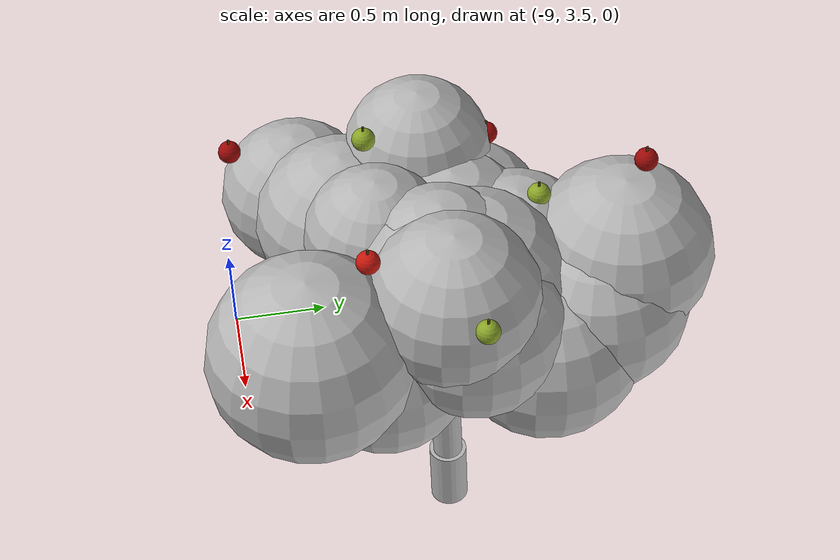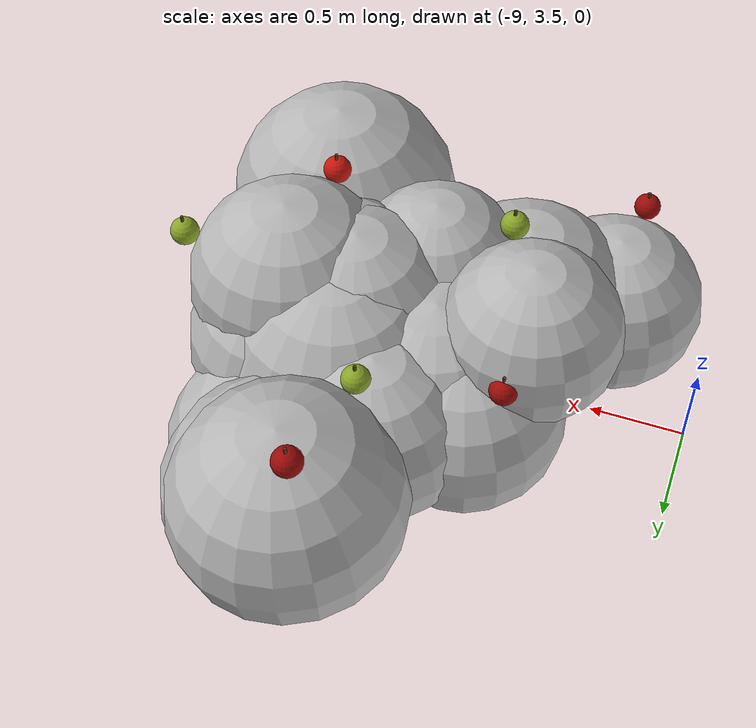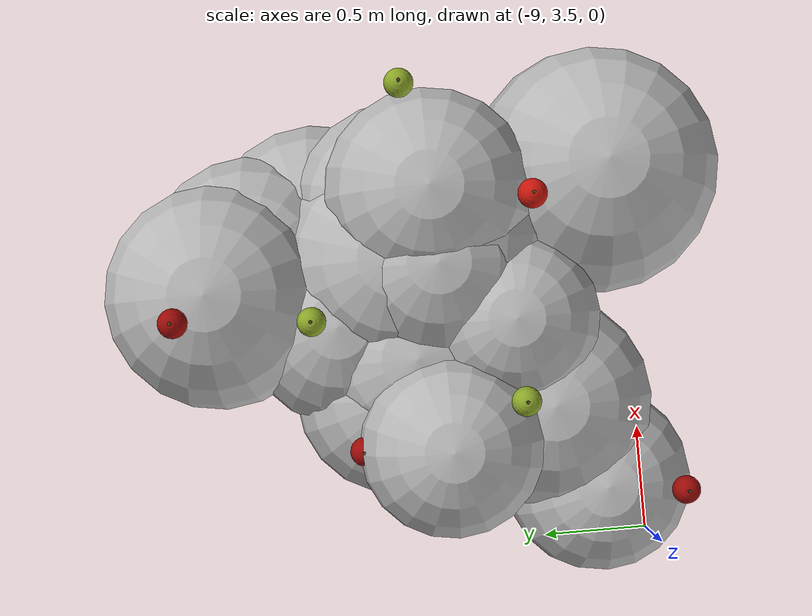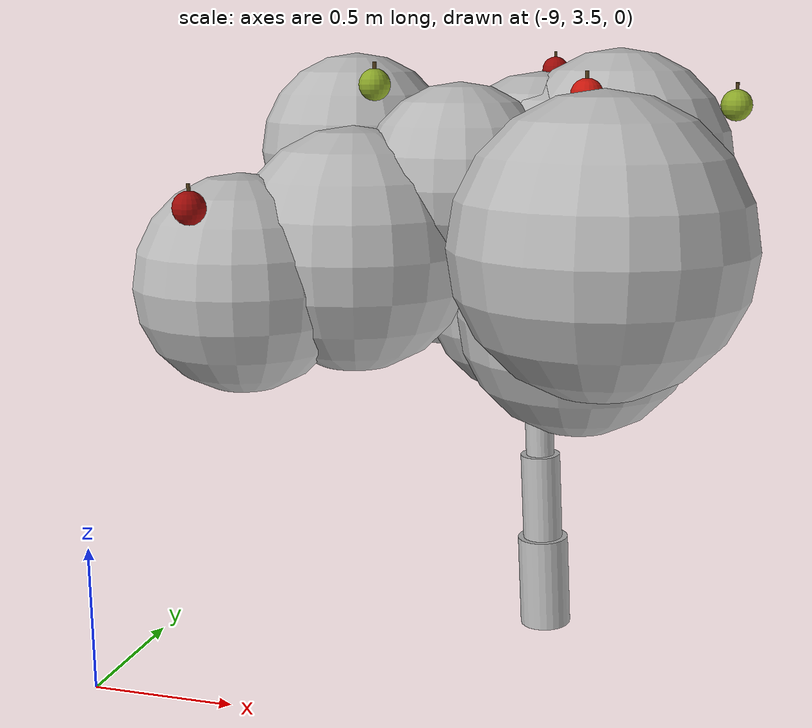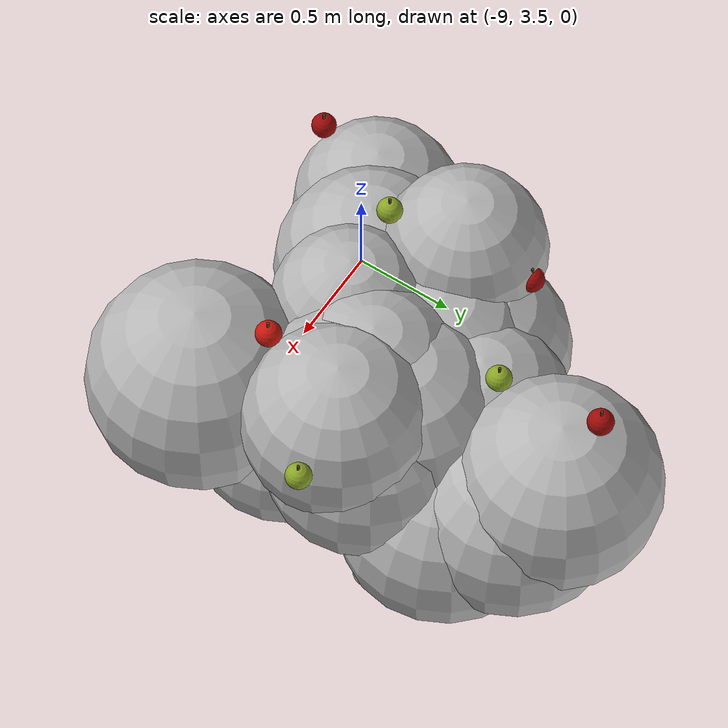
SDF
<sdf version="1.6">
 <world name="default">
  <model name="tree_r4_t4">
   <static>true</static>
   <link name="tree_r4_t4_trunk0">
    <pose>-7.6342 4.4755 0.1623 0.0143 -0.0421 0</pose>
    <collision name="tree_r4_t4_trunk0_c">
     <geometry><cylinder><radius>0.0937</radius><length>0.3441</length></cylinder></geometry>
    </collision>
    <visual name="tree_r4_t4_trunk0_v">
     <geometry><cylinder><radius>0.0937</radius><length>0.3441</length></cylinder></geometry>
     <material>
      <script>
       <uri>model://orchard/materials/scripts</uri>
       <uri>model://orchard/materials/textures</uri>
       <name>Orchard/Bark</name>
      </script>
     </material>
    </visual>
   </link>
   <link name="tree_r4_t4_trunk1">
    <pose>-7.6479 4.4709 0.4869 0.0143 -0.0421 0</pose>
    <visual name="tree_r4_t4_trunk1_v">
     <geometry><cylinder><radius>0.0731</radius><length>0.3441</length></cylinder></geometry>
     <material>
      <script>
       <uri>model://orchard/materials/scripts</uri>
       <uri>model://orchard/materials/textures</uri>
       <name>Orchard/Bark</name>
      </script>
     </material>
    </visual>
   </link>
   <link name="tree_r4_t4_trunk2">
    <pose>-7.6616 4.4662 0.8115 0.0143 -0.0421 0</pose>
    <visual name="tree_r4_t4_trunk2_v">
     <geometry><cylinder><radius>0.0525</radius><length>0.3441</length></cylinder></geometry>
     <material>
      <script>
       <uri>model://orchard/materials/scripts</uri>
       <uri>model://orchard/materials/textures</uri>
       <name>Orchard/Bark</name>
      </script>
     </material>
    </visual>
   </link>
   <link name="tree_r4_t4_br0">
    <pose>-7.4836 4.5228 1.1774 0.0000 0.7613 0.3084</pose>
    <visual name="tree_r4_t4_br0_v">
     <geometry><cylinder><radius>0.0338</radius><length>0.5623</length></cylinder></geometry>
     <material>
      <script>
       <uri>model://orchard/materials/scripts</uri>
       <uri>model://orchard/materials/textures</uri>
       <name>Orchard/Bark</name>
      </script>
     </material>
    </visual>
   </link>
   <link name="tree_r4_t4_br1">
    <pose>-7.6581 4.7674 1.1425 0.0000 1.0637 1.5370</pose>
    <visual name="tree_r4_t4_br1_v">
     <geometry><cylinder><radius>0.0328</radius><length>0.6947</length></cylinder></geometry>
     <material>
      <script>
       <uri>model://orchard/materials/scripts</uri>
       <uri>model://orchard/materials/textures</uri>
       <name>Orchard/Bark</name>
      </script>
     </material>
    </visual>
   </link>
   <link name="tree_r4_t4_br2">
    <pose>-7.9332 4.5823 1.2158 0.0000 0.8756 2.7210</pose>
    <visual name="tree_r4_t4_br2_v">
     <geometry><cylinder><radius>0.0286</radius><length>0.7555</length></cylinder></geometry>
     <material>
      <script>
       <uri>model://orchard/materials/scripts</uri>
       <uri>model://orchard/materials/textures</uri>
       <name>Orchard/Bark</name>
      </script>
     </material>
    </visual>
   </link>
   <link name="tree_r4_t4_br3">
    <pose>-7.9966 4.2976 1.1609 0.0000 1.1005 3.6108</pose>
    <visual name="tree_r4_t4_br3_v">
     <geometry><cylinder><radius>0.0285</radius><length>0.8255</length></cylinder></geometry>
     <material>
      <script>
       <uri>model://orchard/materials/scripts</uri>
       <uri>model://orchard/materials/textures</uri>
       <name>Orchard/Bark</name>
      </script>
     </material>
    </visual>
   </link>
   <link name="tree_r4_t4_br4">
    <pose>-7.5780 4.2251 1.2542 0.0000 0.7387 5.0741</pose>
    <visual name="tree_r4_t4_br4_v">
     <geometry><cylinder><radius>0.0268</radius><length>0.7584</length></cylinder></geometry>
     <material>
      <script>
       <uri>model://orchard/materials/scripts</uri>
       <uri>model://orchard/materials/textures</uri>
       <name>Orchard/Bark</name>
      </script>
     </material>
    </visual>
   </link>
   <link name="tree_r4_t4_fol0">
    <pose>-8.5709 3.8752 1.3639 0 0 0</pose>
    <visual name="tree_r4_t4_fol0_v">
     <geometry><sphere><radius>0.3738</radius></sphere></geometry>
     <material>
      <script>
       <uri>model://orchard/materials/scripts</uri>
       <uri>model://orchard/materials/textures</uri>
       <name>Orchard/Foliage3</name>
      </script>
     </material>
    </visual>
   </link>
   <link name="tree_r4_t4_fol1">
    <pose>-7.7112 5.3161 1.5819 0 0 0</pose>
    <visual name="tree_r4_t4_fol1_v">
     <geometry><sphere><radius>0.4435</radius></sphere></geometry>
     <material>
      <script>
       <uri>model://orchard/materials/scripts</uri>
       <uri>model://orchard/materials/textures</uri>
       <name>Orchard/Foliage0</name>
      </script>
     </material>
    </visual>
   </link>
   <link name="tree_r4_t4_fol2">
    <pose>-7.3919 4.4667 1.7390 0 0 0</pose>
    <visual name="tree_r4_t4_fol2_v">
     <geometry><sphere><radius>0.4070</radius></sphere></geometry>
     <material>
      <script>
       <uri>model://orchard/materials/scripts</uri>
       <uri>model://orchard/materials/textures</uri>
       <name>Orchard/Foliage0</name>
      </script>
     </material>
    </visual>
   </link>
   <link name="tree_r4_t4_fol3">
    <pose>-7.8932 4.1883 1.6902 0 0 0</pose>
    <visual name="tree_r4_t4_fol3_v">
     <geometry><sphere><radius>0.3430</radius></sphere></geometry>
     <material>
      <script>
       <uri>model://orchard/materials/scripts</uri>
       <uri>model://orchard/materials/textures</uri>
       <name>Orchard/Foliage3</name>
      </script>
     </material>
    </visual>
   </link>
   <link name="tree_r4_t4_fol4">
    <pose>-8.2354 4.0647 1.4660 0 0 0</pose>
    <visual name="tree_r4_t4_fol4_v">
     <geometry><sphere><radius>0.4222</radius></sphere></geometry>
     <material>
      <script>
       <uri>model://orchard/materials/scripts</uri>
       <uri>model://orchard/materials/textures</uri>
       <name>Orchard/Foliage1</name>
      </script>
     </material>
    </visual>
   </link>
   <link name="tree_r4_t4_fol5">
    <pose>-7.6661 4.4532 1.6804 0 0 0</pose>
    <visual name="tree_r4_t4_fol5_v">
     <geometry><sphere><radius>0.3842</radius></sphere></geometry>
     <material>
      <script>
       <uri>model://orchard/materials/scripts</uri>
       <uri>model://orchard/materials/textures</uri>
       <name>Orchard/Foliage1</name>
      </script>
     </material>
    </visual>
   </link>
   <link name="tree_r4_t4_fol6">
    <pose>-7.8719 4.8481 1.4986 0 0 0</pose>
    <visual name="tree_r4_t4_fol6_v">
     <geometry><sphere><radius>0.3893</radius></sphere></geometry>
     <material>
      <script>
       <uri>model://orchard/materials/scripts</uri>
       <uri>model://orchard/materials/textures</uri>
       <name>Orchard/Foliage3</name>
      </script>
     </material>
    </visual>
   </link>
   <link name="tree_r4_t4_fol7">
    <pose>-7.5899 4.4539 1.6106 0 0 0</pose>
    <visual name="tree_r4_t4_fol7_v">
     <geometry><sphere><radius>0.4463</radius></sphere></geometry>
     <material>
      <script>
       <uri>model://orchard/materials/scripts</uri>
       <uri>model://orchard/materials/textures</uri>
       <name>Orchard/Foliage2</name>
      </script>
     </material>
    </visual>
   </link>
   <link name="tree_r4_t4_fol8">
    <pose>-7.4674 4.1506 1.2572 0 0 0</pose>
    <visual name="tree_r4_t4_fol8_v">
     <geometry><sphere><radius>0.4128</radius></sphere></geometry>
     <material>
      <script>
       <uri>model://orchard/materials/scripts</uri>
       <uri>model://orchard/materials/textures</uri>
       <name>Orchard/Foliage2</name>
      </script>
     </material>
    </visual>
   </link>
   <link name="tree_r4_t4_fol9">
    <pose>-8.1582 4.6586 1.4373 0 0 0</pose>
    <visual name="tree_r4_t4_fol9_v">
     <geometry><sphere><radius>0.4004</radius></sphere></geometry>
     <material>
      <script>
       <uri>model://orchard/materials/scripts</uri>
       <uri>model://orchard/materials/textures</uri>
       <name>Orchard/Foliage3</name>
      </script>
     </material>
    </visual>
   </link>
   <link name="tree_r4_t4_fol10">
    <pose>-8.0157 4.5611 1.4826 0 0 0</pose>
    <visual name="tree_r4_t4_fol10_v">
     <geometry><sphere><radius>0.4357</radius></sphere></geometry>
     <material>
      <script>
       <uri>model://orchard/materials/scripts</uri>
       <uri>model://orchard/materials/textures</uri>
       <name>Orchard/Foliage3</name>
      </script>
     </material>
    </visual>
   </link>
   <link name="tree_r4_t4_fol11">
    <pose>-7.3401 3.8036 1.5423 0 0 0</pose>
    <visual name="tree_r4_t4_fol11_v">
     <geometry><sphere><radius>0.4842</radius></sphere></geometry>
     <material>
      <script>
       <uri>model://orchard/materials/scripts</uri>
       <uri>model://orchard/materials/textures</uri>
       <name>Orchard/Foliage0</name>
      </script>
     </material>
    </visual>
   </link>
   <link name="tree_r4_t4_fol12">
    <pose>-7.6380 4.6096 1.5474 0 0 0</pose>
    <visual name="tree_r4_t4_fol12_v">
     <geometry><sphere><radius>0.4620</radius></sphere></geometry>
     <material>
      <script>
       <uri>model://orchard/materials/scripts</uri>
       <uri>model://orchard/materials/textures</uri>
       <name>Orchard/Foliage3</name>
      </script>
     </material>
    </visual>
   </link>
   <link name="tree_r4_t4_fol13">
    <pose>-8.3534 4.4578 1.7728 0 0 0</pose>
    <visual name="tree_r4_t4_fol13_v">
     <geometry><sphere><radius>0.3540</radius></sphere></geometry>
     <material>
      <script>
       <uri>model://orchard/materials/scripts</uri>
       <uri>model://orchard/materials/textures</uri>
       <name>Orchard/Foliage1</name>
      </script>
     </material>
    </visual>
   </link>
   <link name="tree_r4_t4_fol14">
    <pose>-7.6026 5.1813 1.3894 0 0 0</pose>
    <visual name="tree_r4_t4_fol14_v">
     <geometry><sphere><radius>0.4527</radius></sphere></geometry>
     <material>
      <script>
       <uri>model://orchard/materials/scripts</uri>
       <uri>model://orchard/materials/textures</uri>
       <name>Orchard/Foliage1</name>
      </script>
     </material>
    </visual>
   </link>
   <link name="tree_r4_t4_fol15">
    <pose>-7.4920 4.9269 1.2494 0 0 0</pose>
    <visual name="tree_r4_t4_fol15_v">
     <geometry><sphere><radius>0.4629</radius></sphere></geometry>
     <material>
      <script>
       <uri>model://orchard/materials/scripts</uri>
       <uri>model://orchard/materials/textures</uri>
       <name>Orchard/Foliage2</name>
      </script>
     </material>
    </visual>
   </link>
   <link name="tree_r4_t4_fol16">
    <pose>-7.6954 4.3656 1.2749 0 0 0</pose>
    <visual name="tree_r4_t4_fol16_v">
     <geometry><sphere><radius>0.3548</radius></sphere></geometry>
     <material>
      <script>
       <uri>model://orchard/materials/scripts</uri>
       <uri>model://orchard/materials/textures</uri>
       <name>Orchard/Foliage3</name>
      </script>
     </material>
    </visual>
   </link>
   <link name="tree_r4_t4_fol17">
    <pose>-7.4333 4.5720 1.5073 0 0 0</pose>
    <visual name="tree_r4_t4_fol17_v">
     <geometry><sphere><radius>0.4364</radius></sphere></geometry>
     <material>
      <script>
       <uri>model://orchard/materials/scripts</uri>
       <uri>model://orchard/materials/textures</uri>
       <name>Orchard/Foliage3</name>
      </script>
     </material>
    </visual>
   </link>
   <link name="tree_r4_t4_ap0">
    <pose>-8.3444 4.7878 1.8259 0 0 0</pose>
    <visual name="tree_r4_t4_ap0_v">
     <geometry><sphere><radius>0.0550</radius></sphere></geometry>
     <material>
      <ambient>0.248 0.016 0.012 1.00</ambient>
      <diffuse>0.620 0.040 0.030 1.00</diffuse>
      <specular>0.45 0.35 0.32 1</specular>
     </material>
    </visual>
   </link>
   <link name="tree_r4_t4_st0">
    <pose>-8.3444 4.7878 1.8782 0 0 0</pose>
    <visual name="tree_r4_t4_st0_v">
     <geometry><cylinder><radius>0.0060</radius><length>0.0500</length></cylinder></geometry>
     <material><ambient>0.128 0.096 0.040 1.00</ambient><diffuse>0.320 0.240 0.100 1.00</diffuse></material>
    </visual>
   </link>
   <link name="tree_r4_t4_ap1">
    <pose>-8.6133 3.5670 1.6509 0 0 0</pose>
    <visual name="tree_r4_t4_ap1_v">
     <geometry><sphere><radius>0.0550</radius></sphere></geometry>
     <material>
      <ambient>0.248 0.016 0.012 1.00</ambient>
      <diffuse>0.620 0.040 0.030 1.00</diffuse>
      <specular>0.45 0.35 0.32 1</specular>
     </material>
    </visual>
   </link>
   <link name="tree_r4_t4_st1">
    <pose>-8.6133 3.5670 1.7032 0 0 0</pose>
    <visual name="tree_r4_t4_st1_v">
     <geometry><cylinder><radius>0.0060</radius><length>0.0500</length></cylinder></geometry>
     <material><ambient>0.128 0.096 0.040 1.00</ambient><diffuse>0.320 0.240 0.100 1.00</diffuse></material>
    </visual>
   </link>
   <link name="tree_r4_t4_ap2">
    <pose>-8.1966 4.1807 2.0207 0 0 0</pose>
    <visual name="tree_r4_t4_ap2_v">
     <geometry><sphere><radius>0.0550</radius></sphere></geometry>
     <material>
      <ambient>0.220 0.264 0.064 1.00</ambient>
      <diffuse>0.550 0.660 0.160 1.00</diffuse>
      <specular>0.45 0.35 0.32 1</specular>
     </material>
    </visual>
   </link>
   <link name="tree_r4_t4_st2">
    <pose>-8.1966 4.1807 2.0729 0 0 0</pose>
    <visual name="tree_r4_t4_st2_v">
     <geometry><cylinder><radius>0.0060</radius><length>0.0500</length></cylinder></geometry>
     <material><ambient>0.128 0.096 0.040 1.00</ambient><diffuse>0.320 0.240 0.100 1.00</diffuse></material>
    </visual>
   </link>
   <link name="tree_r4_t4_ap3">
    <pose>-7.4446 4.0925 1.9950 0 0 0</pose>
    <visual name="tree_r4_t4_ap3_v">
     <geometry><sphere><radius>0.0550</radius></sphere></geometry>
     <material>
      <ambient>0.320 0.036 0.020 1.00</ambient>
      <diffuse>0.800 0.090 0.050 1.00</diffuse>
      <specular>0.45 0.35 0.32 1</specular>
     </material>
    </visual>
   </link>
   <link name="tree_r4_t4_st3">
    <pose>-7.4446 4.0925 2.0472 0 0 0</pose>
    <visual name="tree_r4_t4_st3_v">
     <geometry><cylinder><radius>0.0060</radius><length>0.0500</length></cylinder></geometry>
     <material><ambient>0.128 0.096 0.040 1.00</ambient><diffuse>0.320 0.240 0.100 1.00</diffuse></material>
    </visual>
   </link>
   <link name="tree_r4_t4_ap4">
    <pose>-7.8056 5.4309 2.0520 0 0 0</pose>
    <visual name="tree_r4_t4_ap4_v">
     <geometry><sphere><radius>0.0550</radius></sphere></geometry>
     <material>
      <ambient>0.248 0.016 0.012 1.00</ambient>
      <diffuse>0.620 0.040 0.030 1.00</diffuse>
      <specular>0.45 0.35 0.32 1</specular>
     </material>
    </visual>
   </link>
   <link name="tree_r4_t4_st4">
    <pose>-7.8056 5.4309 2.1042 0 0 0</pose>
    <visual name="tree_r4_t4_st4_v">
     <geometry><cylinder><radius>0.0060</radius><length>0.0500</length></cylinder></geometry>
     <material><ambient>0.128 0.096 0.040 1.00</ambient><diffuse>0.320 0.240 0.100 1.00</diffuse></material>
    </visual>
   </link>
   <link name="tree_r4_t4_ap5">
    <pose>-7.8422 4.9429 1.8773 0 0 0</pose>
    <visual name="tree_r4_t4_ap5_v">
     <geometry><sphere><radius>0.0550</radius></sphere></geometry>
     <material>
      <ambient>0.220 0.264 0.064 1.00</ambient>
      <diffuse>0.550 0.660 0.160 1.00</diffuse>
      <specular>0.45 0.35 0.32 1</specular>
     </material>
    </visual>
   </link>
   <link name="tree_r4_t4_st5">
    <pose>-7.8422 4.9429 1.9296 0 0 0</pose>
    <visual name="tree_r4_t4_st5_v">
     <geometry><cylinder><radius>0.0060</radius><length>0.0500</length></cylinder></geometry>
     <material><ambient>0.128 0.096 0.040 1.00</ambient><diffuse>0.320 0.240 0.100 1.00</diffuse></material>
    </visual>
   </link>
   <link name="tree_r4_t4_ap6">
    <pose>-6.9946 4.5449 1.9496 0 0 0</pose>
    <visual name="tree_r4_t4_ap6_v">
     <geometry><sphere><radius>0.0550</radius></sphere></geometry>
     <material>
      <ambient>0.220 0.264 0.064 1.00</ambient>
      <diffuse>0.550 0.660 0.160 1.00</diffuse>
      <specular>0.45 0.35 0.32 1</specular>
     </material>
    </visual>
   </link>
   <link name="tree_r4_t4_st6">
    <pose>-6.9946 4.5449 2.0019 0 0 0</pose>
    <visual name="tree_r4_t4_st6_v">
     <geometry><cylinder><radius>0.0060</radius><length>0.0500</length></cylinder></geometry>
     <material><ambient>0.128 0.096 0.040 1.00</ambient><diffuse>0.320 0.240 0.100 1.00</diffuse></material>
    </visual>
   </link>
  </model>
 </world>
</sdf>
